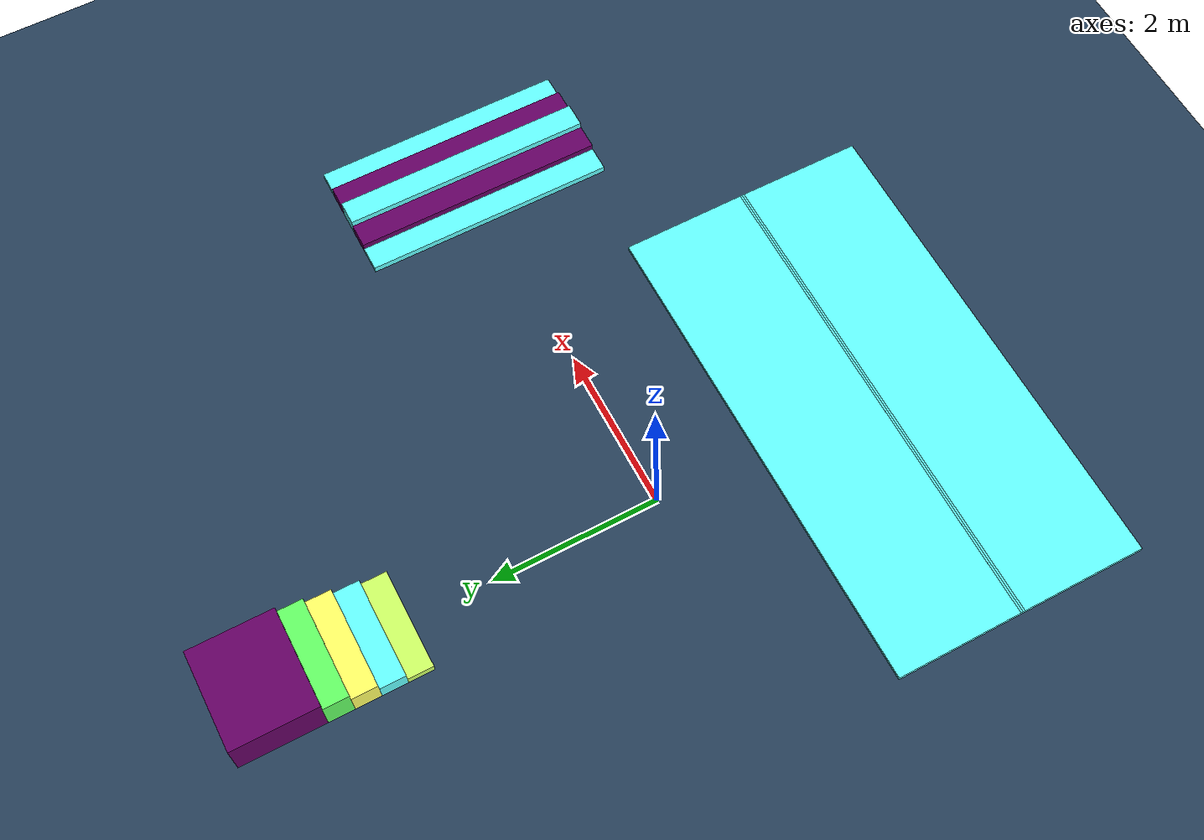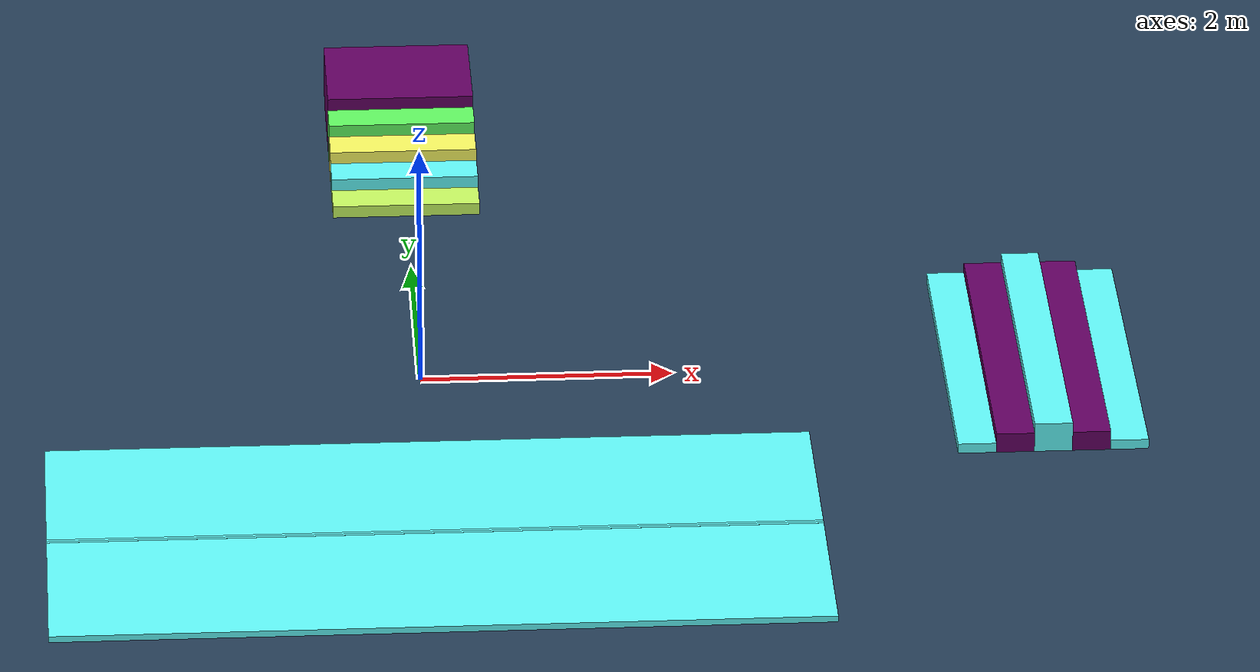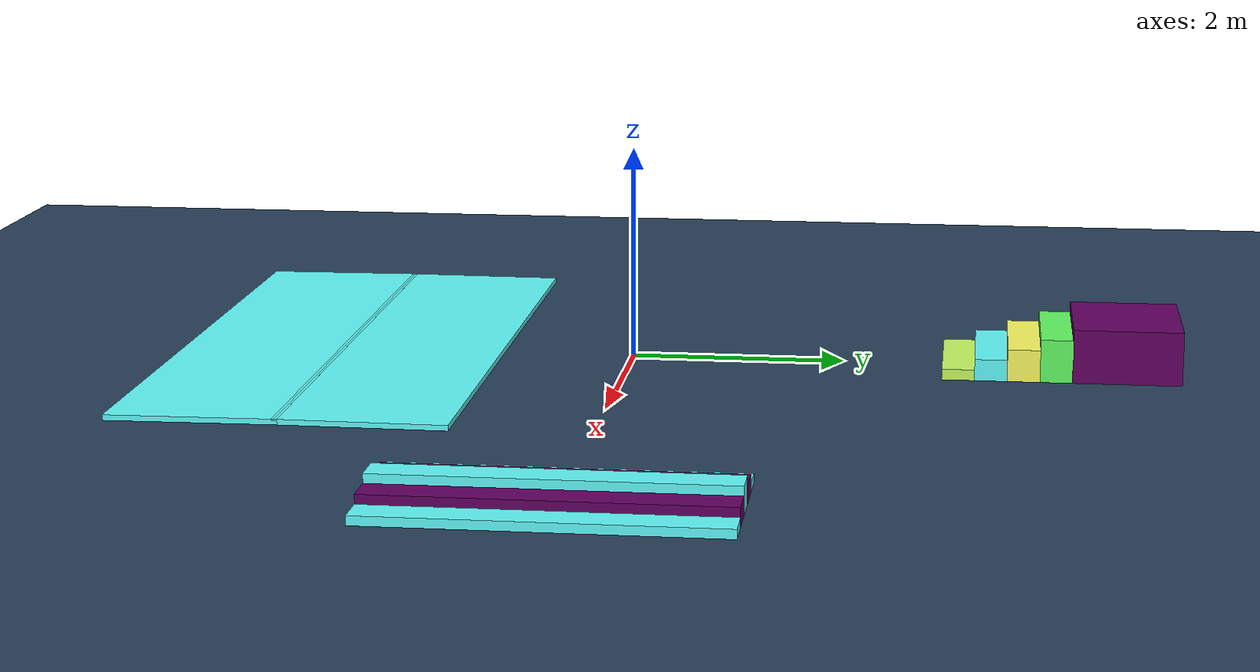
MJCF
<mujoco model="stair">
  <statistic center="0 0 0.55" extent="1.1"/>

  <visual>
    <headlight diffuse="0.6 0.6 0.6" ambient="0.3 0.3 0.3" specular="0 0 0"/>
    <rgba haze="0.15 0.25 0.35 1"/>
    <global azimuth="150" elevation="-20"/>
  </visual>
  <visual>
    <rgba com="0.502 1.0 0 0.5" contactforce="0.98 0.4 0.4 1" contactpoint="1.0 1.0 0.6 0.4"/>
    <scale com="1" forcewidth="0.03" contactwidth="0.01" contactheight="0.02" framewidth="0.05" framelength="0.6"/>
    <map force="0.005"/>
  </visual>
  <asset>
    <texture type="skybox" name="skybox" builtin="gradient" mark="random" rgb1="0.2 0.3 0.4" rgb2="0 0 0" markrgb="1 1 1" random="0.001" width="1000" height="6000"/>
    <texture type="2d" name="groundplane" builtin="checker" mark="edge" rgb1="0.2 0.3 0.4" rgb2="0.1 0.2 0.3" markrgb="0.8 0.8 0.8" width="1000" height="1000"/>
    <material name="metalic silver" rgba="0.59 0.59 0.65 1"/>
    <material name="metalic black" rgba="0.235294 0.235294 0.235294 1"/>
    <material name="groundplane" texture="groundplane" texuniform="true" texrepeat="5 5" reflectance="0.2"/>
  </asset>

  <worldbody>
    <geom name="floor" size="300 300 0.125" type="plane" conaffinity="7" friction="1.5 0.005 0.0001" material="groundplane"/>
    <light pos="0 0 10" dir="0 0 -1" directional="true"/>
    <light name="spotlight" target="pelvis_link" pos="0 -1 2" dir="0 0 -1" mode="targetbodycom"/>

    <body name="box" pos="0 6 0">
      <geom type="box" size="0.6 0.5 0.25" euler="0 0 0" pos="0 -1.366 0.25" rgba="0.39 0 0.39 1" conaffinity="15" condim="3"/>
      <geom type="box" size="0.6 0.15 0.2" euler="0 0 0" pos="0 -2.01 0.2" rgba="0.39 1 0.39 1" conaffinity="15" condim="3"/>
      <geom type="box" size="0.6 0.15 0.15" euler="0 0 0" pos="0 -2.31 0.15" rgba="1 1 0.39 1" conaffinity="15" condim="3"/>
      <geom type="box" size="0.6 0.15 0.1" euler="0 0 0" pos="0 -2.61 0.1" rgba="0.39 1 2 1" conaffinity="15" condim="3"/>
      <geom type="box" size="0.6 0.15 0.05" euler="0 0 0" pos="0 -2.91 0.05" rgba="0.8 1 0.39 1" conaffinity="15" condim="3"/>
    </body>

    <body name="box2" pos="4.0 0 0">
      <geom type="box" size="0.15 1.5 0.040" euler="0 0 0" pos="0.3 0.0 0.040" rgba="0.39 1 2 1" conaffinity="15" condim="3"/>
      <geom type="box" size="0.15 1.5 0.080" euler="0 0 0" pos="0.6 0.0 0.080" rgba="0.39 0 0.39 1" conaffinity="15" condim="3"/>
      <geom type="box" size="0.15 1.5 0.120" euler="0 0 0" pos="0.9 0.0 0.120" rgba="0.39 1 2 1" conaffinity="15" condim="3"/>
      <geom type="box" size="0.15 1.5 0.080" euler="0 0 0" pos="1.2 0.0 0.080" rgba="0.39 0 0.39 1" conaffinity="15" condim="3"/>
      <geom type="box" size="0.15 1.5 0.040" euler="0 0 0" pos="1.5 0.0 0.040" rgba="0.39 1 2 1" conaffinity="15" condim="3"/>
    </body>

    <body name="box3" pos="0 -5 0">
      <geom type="box" size="3.0 0.776 0.025" euler="0.3 0 0" pos="0 1.5 0.06" rgba="0.39 1 2 1" conaffinity="15" condim="3"/>
      <geom type="box" size="3.0 0.776 0.025" euler="-0.3 0 0" pos="0 3.0 0.06" rgba="0.39 1 2 1" conaffinity="15" condim="3"/>
    </body>

  </worldbody>
</mujoco>
